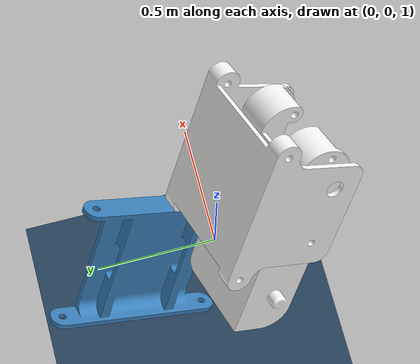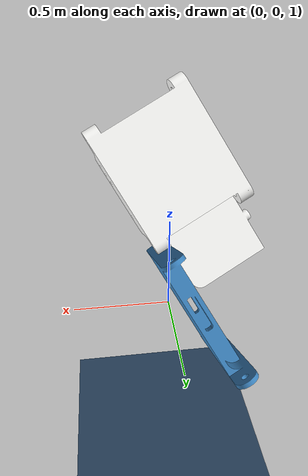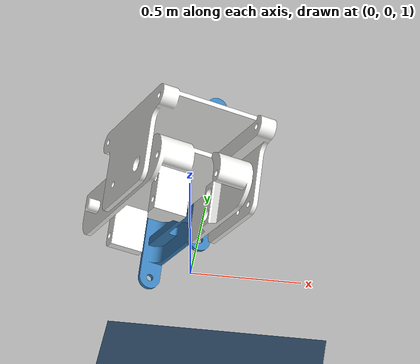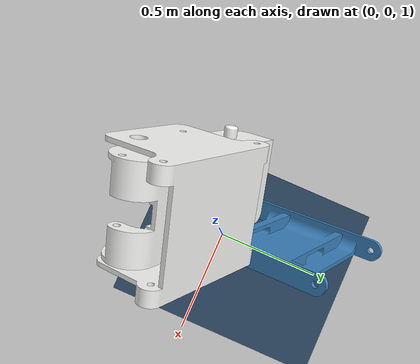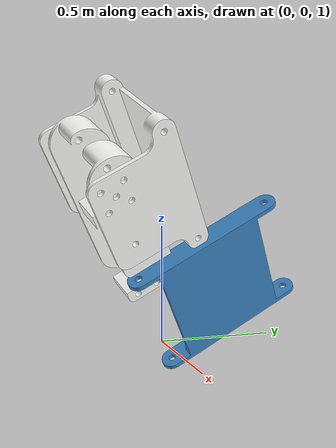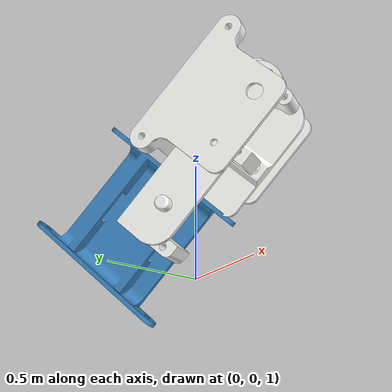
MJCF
<mujoco model="hello">
  <option gravity="0 0 -9.81"/>
   <compiler angle="radian"/>

<default>
  <mesh scale="0.01 0.01 0.01"/>
  <geom type="mesh" solref="0.005 1"/>
</default>

  <asset>
    <texture name="grid" type="2d" builtin="checker" width="512" height="512" rgb1=".1 .2 .3" rgb2=".2 .3 .4"/>
    <material name="blue" rgba="0.23 0.51 0.74 1"/>
    <material name="yellow" rgba="0.99 0.74 0.0 1"/>
    <material name="white" rgba="0.98 0.98 0.97 1"/>
    <material name="grid" texture="grid" texrepeat="1 1" texuniform="true" reflectance=".2"/>
    <mesh name="1R_foot" file="../STL/1R_foot-Body.stl"/>
    <mesh name="2R_footJoint" file="../STL/2R_footJoint_bearing-Body.stl"/>
    <mesh name="3BR_calf" file="../STL/3BR_calf-Body.stl"/>
    <mesh name="3FU_shin" file="../STL/3FU_shin-Body.stl"/>
    <mesh name="4R_knee" file="../STL/4R_knee-Body.stl"/>
  </asset>

  <worldbody>
   <camera name="global" pos="-2.0 2.0 3" xyaxes="-1.0 -1 0 1.0 0 1" mode="trackcom"/>
    <!-- light pos="0 0 1" dir="0 0 -1" diffuse="0.1 0.8 0.8"/-->
    <light directional="true" pos="-0.5 0.5 3" dir="0 0 -1" />
    <!-- geom name="floor" size="1 1 0.05" rgba="1.0 0.0 0.0 1.0" type="plane"/-->
    <!-- geom name="floor" pos="0 0 -0.1" size="0 0 0.1" type="plane" rgba="0.4 0.4 0.4 1.0"/-->
    <geom name="floor" size="0 0 .05" type="plane" material="grid" condim="3"/>
    <body name="4RkneeLink" pos="0 0 1.8" euler= "0.5 0.5 0.0">
        <joint type="free"/>

        <inertial pos="0 0 0.1" mass="0.10" diaginertia="0.005 0.005 0.005"/>
        <geom mesh="4R_knee" type="mesh" material="white"/>

        <body name="3FULink" pos="0.0 -0.025 -0.6" euler="-1.57 0 0">
            <joint name="3FUJoint" axis="1 0 0" pos="0.01 -0.33 -0.03"/>

            <inertial pos="0 0 0" mass="0.05" diaginertia="0.005 0.005 0.005"/>
            <geom mesh="3FU_shin" type="mesh" euler="0 0 0" pos="0.0 0.0 0.0" material="blue"/>
        </body>

        <body name="3BRJoint" pos="0 -0.17 -0.225" euler="1.57 0 -1.57">
             <joint name="3BRJoint" axis="0 1 0" pos="-0.10 0.0 0.14"/>

            <inertial pos="0 0 0" mass="0.10" diaginertia="0.005 0.005 0.005"/>
            <geom mesh="3BR_calf" type="mesh" euler="0 0 0" pos="0.0 0.0 0.0" material="white"/>
        </body>
    </body>
  </worldbody>

</mujoco>
